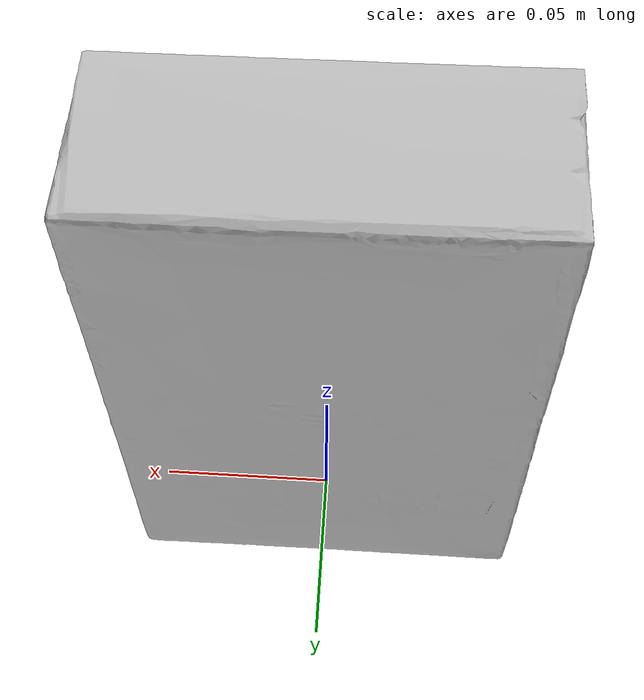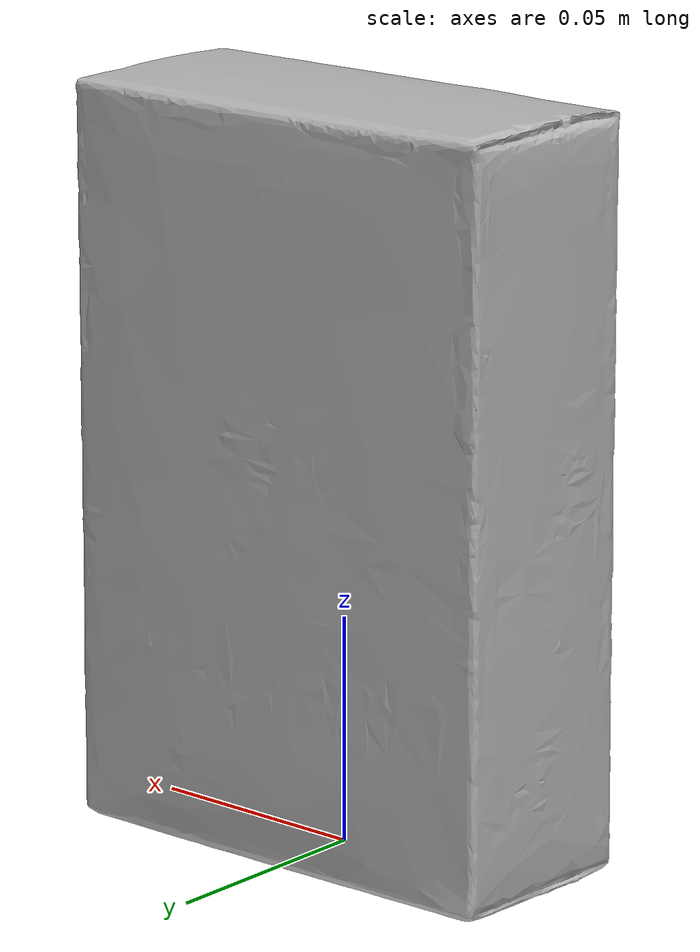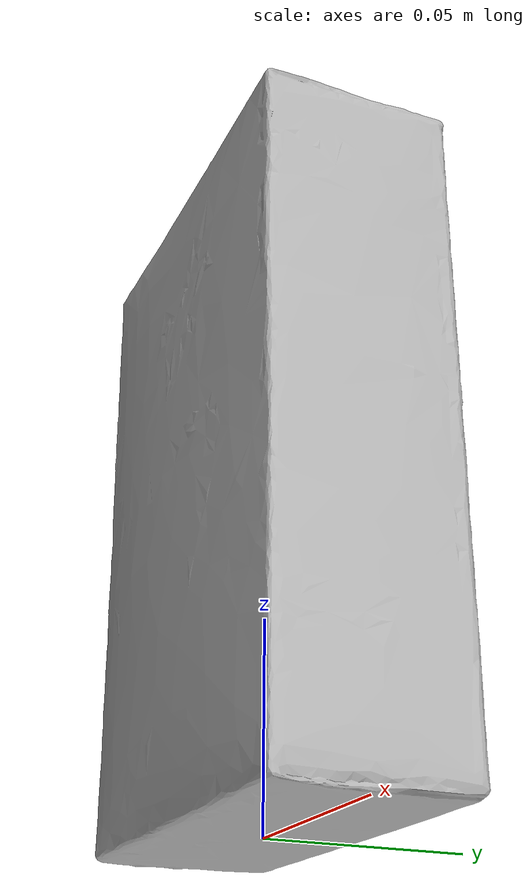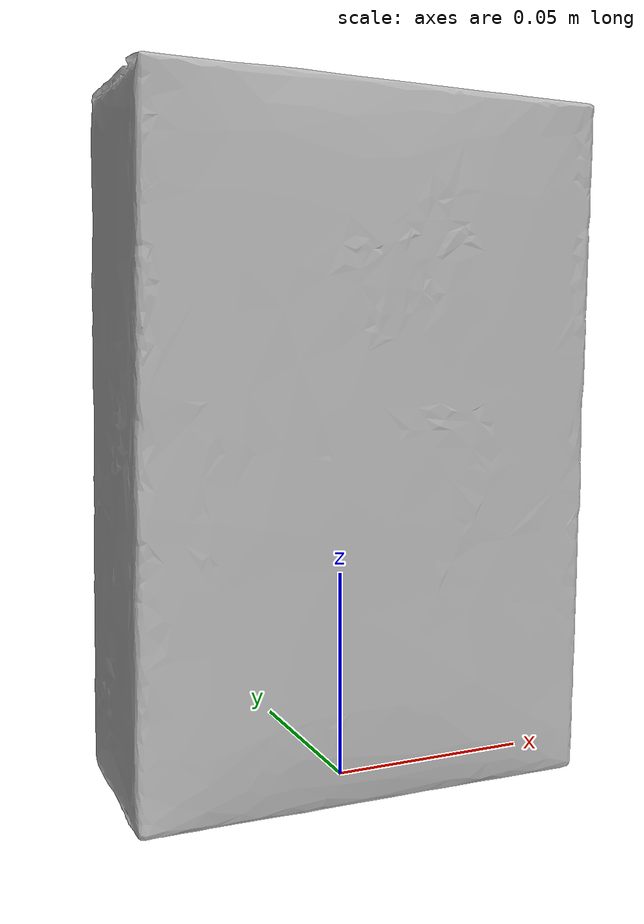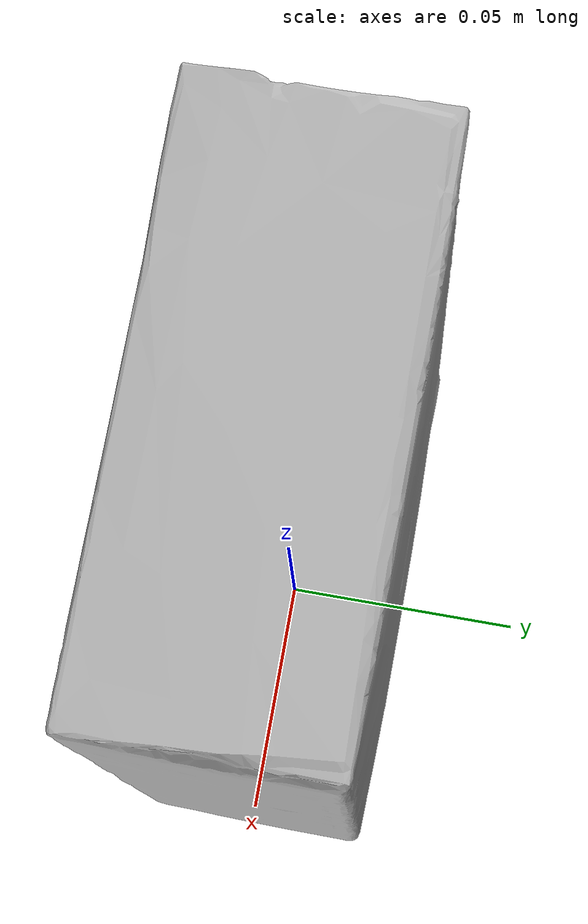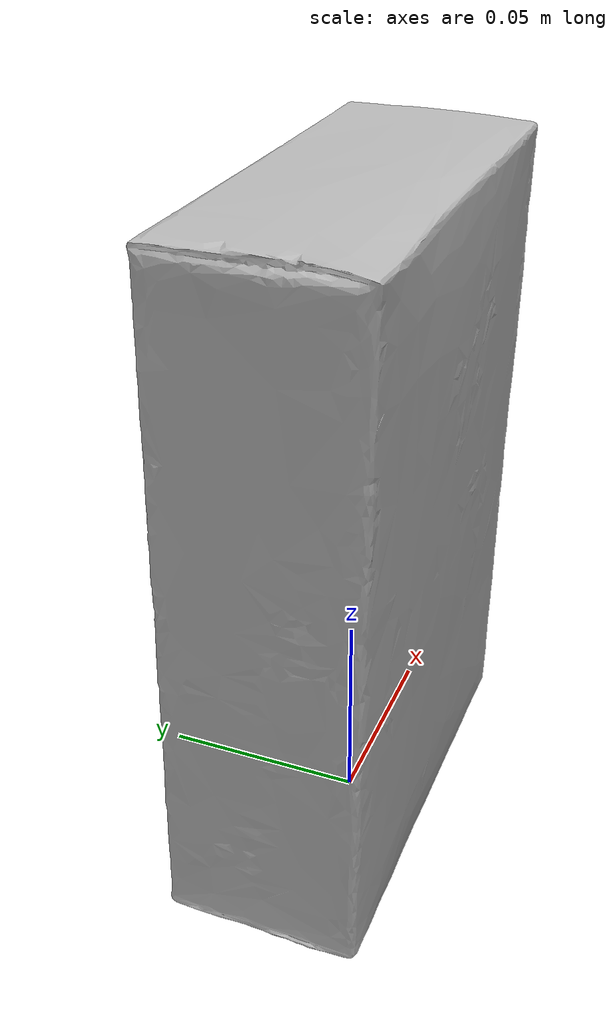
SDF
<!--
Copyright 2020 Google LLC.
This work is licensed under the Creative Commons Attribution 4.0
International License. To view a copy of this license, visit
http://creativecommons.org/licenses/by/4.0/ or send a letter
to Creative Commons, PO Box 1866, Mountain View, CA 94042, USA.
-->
<?xml version="1.0" ?>
<sdf version="1.6">
  <model name="Nestl_Skinny_Cow_Heavenly_Crisp_Candy_Bar_Chocolate_Raspberry_6_pack_462_oz_total">
    <link name="link_0">
      <visual name="visual">
        <geometry>
          <mesh>
            <uri>model://snackbar/meshes/model.obj</uri>
          </mesh>
        </geometry>
      </visual>
      <collision name="collision_0">
        <geometry>
          <mesh>
            <uri>model://snackbar/meshes/model.obj</uri>
          </mesh>
        </geometry>
      </collision>
    </link>
  </model>
</sdf>
